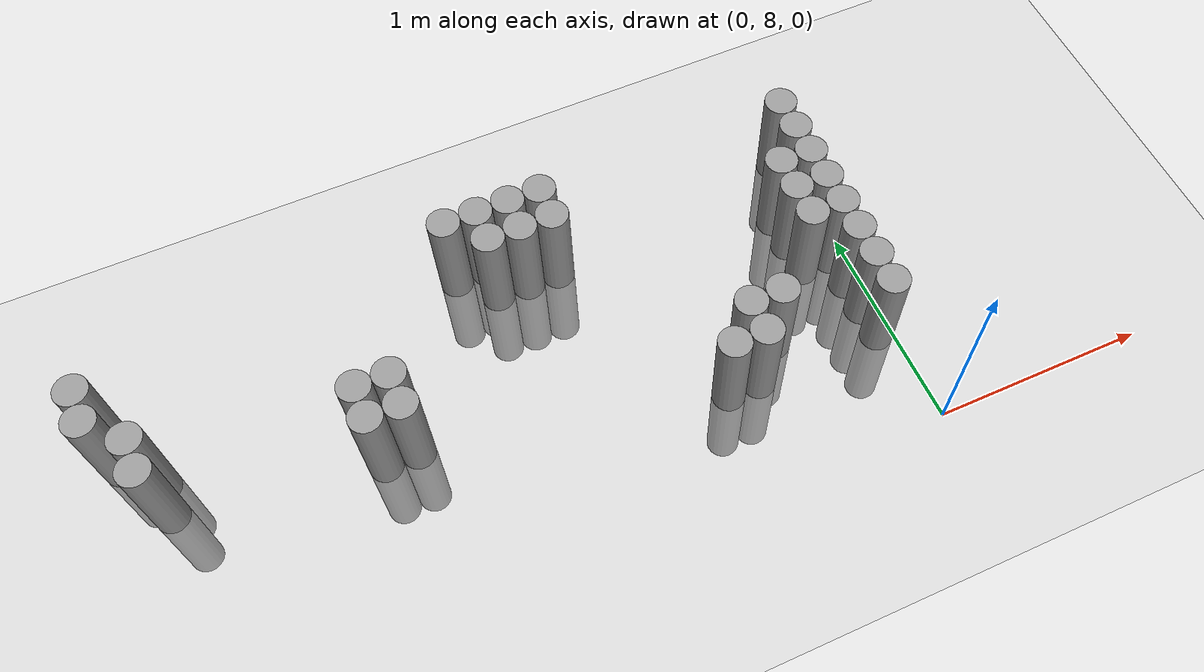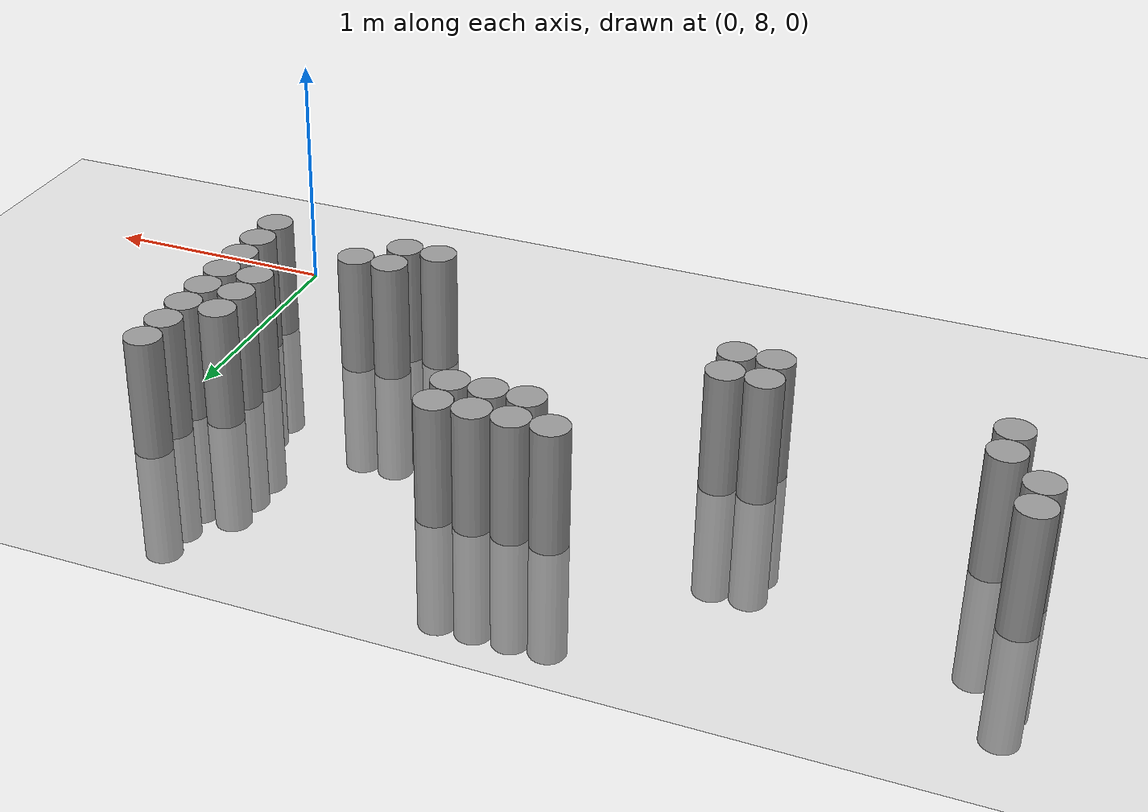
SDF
<sdf version="1.6">
 <world name="default">
  <model name="ground_plane">
   <static>1</static>
   <static>1</static>
   <link name="link">
    <collision name="collision">
     <geometry><plane><normal>0 0 1</normal><size>100 100</size></plane></geometry>
     <surface><friction><ode><mu>100</mu><mu2>50</mu2></ode></friction></surface>
    </collision>
    <visual name="visual">
     <cast_shadows>0</cast_shadows>
     <geometry><plane><normal>0 0 1</normal><size>100 100</size></plane></geometry>
     <material>
      <script><uri>file://media/materials/scripts/gazebo.material</uri><name>Gazebo/Grey</name></script>
     </material>
    </visual>
   </link>
  </model>
  <model name="unit_cylinder_167">
   <static>1</static>
   <pose>-3.375000 9.225000 0.000000 0.000000 0.000000 0.000000</pose>
   <link name="link">
    <inertial>
     <mass>1</mass>
     <inertia><ixx>0.145833</ixx><ixy>0</ixy><ixz>0</ixz><iyy>0.145833</iyy><iyz>0</iyz><izz>0.125</izz></inertia>
    </inertial>
    <collision name="collision">
     <geometry><cylinder><radius>0.075000</radius><length>1</length></cylinder></geometry>
    </collision>
    <visual name="visual">
     <geometry><cylinder><radius>0.075000</radius><length>1</length></cylinder></geometry>
     <material>
      <script><name>Gazebo/Grey</name><uri>file://media/materials/scripts/gazebo.material</uri></script>
     </material>
    </visual>
   </link>
  </model>
  <model name="unit_cylinder_168">
   <static>1</static>
   <pose>-3.375000 9.375000 0.000000 0.000000 0.000000 0.000000</pose>
   <link name="link">
    <inertial>
     <mass>1</mass>
     <inertia><ixx>0.145833</ixx><ixy>0</ixy><ixz>0</ixz><iyy>0.145833</iyy><iyz>0</iyz><izz>0.125</izz></inertia>
    </inertial>
    <collision name="collision">
     <geometry><cylinder><radius>0.075000</radius><length>1</length></cylinder></geometry>
    </collision>
    <visual name="visual">
     <geometry><cylinder><radius>0.075000</radius><length>1</length></cylinder></geometry>
     <material>
      <script><name>Gazebo/Grey</name><uri>file://media/materials/scripts/gazebo.material</uri></script>
     </material>
    </visual>
   </link>
  </model>
  <model name="unit_cylinder_171">
   <static>1</static>
   <pose>-3.225000 8.925000 0.000000 0.000000 0.000000 0.000000</pose>
   <link name="link">
    <inertial>
     <mass>1</mass>
     <inertia><ixx>0.145833</ixx><ixy>0</ixy><ixz>0</ixz><iyy>0.145833</iyy><iyz>0</iyz><izz>0.125</izz></inertia>
    </inertial>
    <collision name="collision">
     <geometry><cylinder><radius>0.075000</radius><length>1</length></cylinder></geometry>
    </collision>
    <visual name="visual">
     <geometry><cylinder><radius>0.075000</radius><length>1</length></cylinder></geometry>
     <material>
      <script><name>Gazebo/Grey</name><uri>file://media/materials/scripts/gazebo.material</uri></script>
     </material>
    </visual>
   </link>
  </model>
  <model name="unit_cylinder_172">
   <static>1</static>
   <pose>-3.225000 9.075000 0.000000 0.000000 0.000000 0.000000</pose>
   <link name="link">
    <inertial>
     <mass>1</mass>
     <inertia><ixx>0.145833</ixx><ixy>0</ixy><ixz>0</ixz><iyy>0.145833</iyy><iyz>0</iyz><izz>0.125</izz></inertia>
    </inertial>
    <collision name="collision">
     <geometry><cylinder><radius>0.075000</radius><length>1</length></cylinder></geometry>
    </collision>
    <visual name="visual">
     <geometry><cylinder><radius>0.075000</radius><length>1</length></cylinder></geometry>
     <material>
      <script><name>Gazebo/Grey</name><uri>file://media/materials/scripts/gazebo.material</uri></script>
     </material>
    </visual>
   </link>
  </model>
  <model name="unit_cylinder_173">
   <static>1</static>
   <pose>-2.325000 8.775000 0.000000 0.000000 0.000000 0.000000</pose>
   <link name="link">
    <inertial>
     <mass>1</mass>
     <inertia><ixx>0.145833</ixx><ixy>0</ixy><ixz>0</ixz><iyy>0.145833</iyy><iyz>0</iyz><izz>0.125</izz></inertia>
    </inertial>
    <collision name="collision">
     <geometry><cylinder><radius>0.075000</radius><length>1</length></cylinder></geometry>
    </collision>
    <visual name="visual">
     <geometry><cylinder><radius>0.075000</radius><length>1</length></cylinder></geometry>
     <material>
      <script><name>Gazebo/Grey</name><uri>file://media/materials/scripts/gazebo.material</uri></script>
     </material>
    </visual>
   </link>
  </model>
  <model name="unit_cylinder_174">
   <static>1</static>
   <pose>-2.325000 8.925000 0.000000 0.000000 0.000000 0.000000</pose>
   <link name="link">
    <inertial>
     <mass>1</mass>
     <inertia><ixx>0.145833</ixx><ixy>0</ixy><ixz>0</ixz><iyy>0.145833</iyy><iyz>0</iyz><izz>0.125</izz></inertia>
    </inertial>
    <collision name="collision">
     <geometry><cylinder><radius>0.075000</radius><length>1</length></cylinder></geometry>
    </collision>
    <visual name="visual">
     <geometry><cylinder><radius>0.075000</radius><length>1</length></cylinder></geometry>
     <material>
      <script><name>Gazebo/Grey</name><uri>file://media/materials/scripts/gazebo.material</uri></script>
     </material>
    </visual>
   </link>
  </model>
  <model name="unit_cylinder_175">
   <static>1</static>
   <pose>-2.175000 8.775000 0.000000 0.000000 0.000000 0.000000</pose>
   <link name="link">
    <inertial>
     <mass>1</mass>
     <inertia><ixx>0.145833</ixx><ixy>0</ixy><ixz>0</ixz><iyy>0.145833</iyy><iyz>0</iyz><izz>0.125</izz></inertia>
    </inertial>
    <collision name="collision">
     <geometry><cylinder><radius>0.075000</radius><length>1</length></cylinder></geometry>
    </collision>
    <visual name="visual">
     <geometry><cylinder><radius>0.075000</radius><length>1</length></cylinder></geometry>
     <material>
      <script><name>Gazebo/Grey</name><uri>file://media/materials/scripts/gazebo.material</uri></script>
     </material>
    </visual>
   </link>
  </model>
  <model name="unit_cylinder_176">
   <static>1</static>
   <pose>-2.175000 8.925000 0.000000 0.000000 0.000000 0.000000</pose>
   <link name="link">
    <inertial>
     <mass>1</mass>
     <inertia><ixx>0.145833</ixx><ixy>0</ixy><ixz>0</ixz><iyy>0.145833</iyy><iyz>0</iyz><izz>0.125</izz></inertia>
    </inertial>
    <collision name="collision">
     <geometry><cylinder><radius>0.075000</radius><length>1</length></cylinder></geometry>
    </collision>
    <visual name="visual">
     <geometry><cylinder><radius>0.075000</radius><length>1</length></cylinder></geometry>
     <material>
      <script><name>Gazebo/Grey</name><uri>file://media/materials/scripts/gazebo.material</uri></script>
     </material>
    </visual>
   </link>
  </model>
  <model name="unit_cylinder_177">
   <static>1</static>
   <pose>-1.725000 9.525000 0.000000 0.000000 0.000000 0.000000</pose>
   <link name="link">
    <inertial>
     <mass>1</mass>
     <inertia><ixx>0.145833</ixx><ixy>0</ixy><ixz>0</ixz><iyy>0.145833</iyy><iyz>0</iyz><izz>0.125</izz></inertia>
    </inertial>
    <collision name="collision">
     <geometry><cylinder><radius>0.075000</radius><length>1</length></cylinder></geometry>
    </collision>
    <visual name="visual">
     <geometry><cylinder><radius>0.075000</radius><length>1</length></cylinder></geometry>
     <material>
      <script><name>Gazebo/Grey</name><uri>file://media/materials/scripts/gazebo.material</uri></script>
     </material>
    </visual>
   </link>
  </model>
  <model name="unit_cylinder_178">
   <static>1</static>
   <pose>-1.575000 9.375000 0.000000 0.000000 0.000000 0.000000</pose>
   <link name="link">
    <inertial>
     <mass>1</mass>
     <inertia><ixx>0.145833</ixx><ixy>0</ixy><ixz>0</ixz><iyy>0.145833</iyy><iyz>0</iyz><izz>0.125</izz></inertia>
    </inertial>
    <collision name="collision">
     <geometry><cylinder><radius>0.075000</radius><length>1</length></cylinder></geometry>
    </collision>
    <visual name="visual">
     <geometry><cylinder><radius>0.075000</radius><length>1</length></cylinder></geometry>
     <material>
      <script><name>Gazebo/Grey</name><uri>file://media/materials/scripts/gazebo.material</uri></script>
     </material>
    </visual>
   </link>
  </model>
  <model name="unit_cylinder_179">
   <static>1</static>
   <pose>-1.575000 9.525000 0.000000 0.000000 0.000000 0.000000</pose>
   <link name="link">
    <inertial>
     <mass>1</mass>
     <inertia><ixx>0.145833</ixx><ixy>0</ixy><ixz>0</ixz><iyy>0.145833</iyy><iyz>0</iyz><izz>0.125</izz></inertia>
    </inertial>
    <collision name="collision">
     <geometry><cylinder><radius>0.075000</radius><length>1</length></cylinder></geometry>
    </collision>
    <visual name="visual">
     <geometry><cylinder><radius>0.075000</radius><length>1</length></cylinder></geometry>
     <material>
      <script><name>Gazebo/Grey</name><uri>file://media/materials/scripts/gazebo.material</uri></script>
     </material>
    </visual>
   </link>
  </model>
  <model name="unit_cylinder_180">
   <static>1</static>
   <pose>-1.425000 9.375000 0.000000 0.000000 0.000000 0.000000</pose>
   <link name="link">
    <inertial>
     <mass>1</mass>
     <inertia><ixx>0.145833</ixx><ixy>0</ixy><ixz>0</ixz><iyy>0.145833</iyy><iyz>0</iyz><izz>0.125</izz></inertia>
    </inertial>
    <collision name="collision">
     <geometry><cylinder><radius>0.075000</radius><length>1</length></cylinder></geometry>
    </collision>
    <visual name="visual">
     <geometry><cylinder><radius>0.075000</radius><length>1</length></cylinder></geometry>
     <material>
      <script><name>Gazebo/Grey</name><uri>file://media/materials/scripts/gazebo.material</uri></script>
     </material>
    </visual>
   </link>
  </model>
  <model name="unit_cylinder_181">
   <static>1</static>
   <pose>-1.425000 9.525000 0.000000 0.000000 0.000000 0.000000</pose>
   <link name="link">
    <inertial>
     <mass>1</mass>
     <inertia><ixx>0.145833</ixx><ixy>0</ixy><ixz>0</ixz><iyy>0.145833</iyy><iyz>0</iyz><izz>0.125</izz></inertia>
    </inertial>
    <collision name="collision">
     <geometry><cylinder><radius>0.075000</radius><length>1</length></cylinder></geometry>
    </collision>
    <visual name="visual">
     <geometry><cylinder><radius>0.075000</radius><length>1</length></cylinder></geometry>
     <material>
      <script><name>Gazebo/Grey</name><uri>file://media/materials/scripts/gazebo.material</uri></script>
     </material>
    </visual>
   </link>
  </model>
  <model name="unit_cylinder_182">
   <static>1</static>
   <pose>-1.275000 9.375000 0.000000 0.000000 0.000000 0.000000</pose>
   <link name="link">
    <inertial>
     <mass>1</mass>
     <inertia><ixx>0.145833</ixx><ixy>0</ixy><ixz>0</ixz><iyy>0.145833</iyy><iyz>0</iyz><izz>0.125</izz></inertia>
    </inertial>
    <collision name="collision">
     <geometry><cylinder><radius>0.075000</radius><length>1</length></cylinder></geometry>
    </collision>
    <visual name="visual">
     <geometry><cylinder><radius>0.075000</radius><length>1</length></cylinder></geometry>
     <material>
      <script><name>Gazebo/Grey</name><uri>file://media/materials/scripts/gazebo.material</uri></script>
     </material>
    </visual>
   </link>
  </model>
  <model name="unit_cylinder_183">
   <static>1</static>
   <pose>-1.275000 9.525000 0.000000 0.000000 0.000000 0.000000</pose>
   <link name="link">
    <inertial>
     <mass>1</mass>
     <inertia><ixx>0.145833</ixx><ixy>0</ixy><ixz>0</ixz><iyy>0.145833</iyy><iyz>0</iyz><izz>0.125</izz></inertia>
    </inertial>
    <collision name="collision">
     <geometry><cylinder><radius>0.075000</radius><length>1</length></cylinder></geometry>
    </collision>
    <visual name="visual">
     <geometry><cylinder><radius>0.075000</radius><length>1</length></cylinder></geometry>
     <material>
      <script><name>Gazebo/Grey</name><uri>file://media/materials/scripts/gazebo.material</uri></script>
     </material>
    </visual>
   </link>
  </model>
  <model name="unit_cylinder_186">
   <static>1</static>
   <pose>-0.825000 8.475000 0.000000 0.000000 0.000000 0.000000</pose>
   <link name="link">
    <inertial>
     <mass>1</mass>
     <inertia><ixx>0.145833</ixx><ixy>0</ixy><ixz>0</ixz><iyy>0.145833</iyy><iyz>0</iyz><izz>0.125</izz></inertia>
    </inertial>
    <collision name="collision">
     <geometry><cylinder><radius>0.075000</radius><length>1</length></cylinder></geometry>
    </collision>
    <visual name="visual">
     <geometry><cylinder><radius>0.075000</radius><length>1</length></cylinder></geometry>
     <material>
      <script><name>Gazebo/Grey</name><uri>file://media/materials/scripts/gazebo.material</uri></script>
     </material>
    </visual>
   </link>
  </model>
  <model name="unit_cylinder_189">
   <static>1</static>
   <pose>-0.675000 8.475000 0.000000 0.000000 0.000000 0.000000</pose>
   <link name="link">
    <inertial>
     <mass>1</mass>
     <inertia><ixx>0.145833</ixx><ixy>0</ixy><ixz>0</ixz><iyy>0.145833</iyy><iyz>0</iyz><izz>0.125</izz></inertia>
    </inertial>
    <collision name="collision">
     <geometry><cylinder><radius>0.075000</radius><length>1</length></cylinder></geometry>
    </collision>
    <visual name="visual">
     <geometry><cylinder><radius>0.075000</radius><length>1</length></cylinder></geometry>
     <material>
      <script><name>Gazebo/Grey</name><uri>file://media/materials/scripts/gazebo.material</uri></script>
     </material>
    </visual>
   </link>
  </model>
  <model name="unit_cylinder_190">
   <static>1</static>
   <pose>-0.675000 8.625000 0.000000 0.000000 0.000000 0.000000</pose>
   <link name="link">
    <inertial>
     <mass>1</mass>
     <inertia><ixx>0.145833</ixx><ixy>0</ixy><ixz>0</ixz><iyy>0.145833</iyy><iyz>0</iyz><izz>0.125</izz></inertia>
    </inertial>
    <collision name="collision">
     <geometry><cylinder><radius>0.075000</radius><length>1</length></cylinder></geometry>
    </collision>
    <visual name="visual">
     <geometry><cylinder><radius>0.075000</radius><length>1</length></cylinder></geometry>
     <material>
      <script><name>Gazebo/Grey</name><uri>file://media/materials/scripts/gazebo.material</uri></script>
     </material>
    </visual>
   </link>
  </model>
  <model name="unit_cylinder_193">
   <static>1</static>
   <pose>-0.525000 8.625000 0.000000 0.000000 0.000000 0.000000</pose>
   <link name="link">
    <inertial>
     <mass>1</mass>
     <inertia><ixx>0.145833</ixx><ixy>0</ixy><ixz>0</ixz><iyy>0.145833</iyy><iyz>0</iyz><izz>0.125</izz></inertia>
    </inertial>
    <collision name="collision">
     <geometry><cylinder><radius>0.075000</radius><length>1</length></cylinder></geometry>
    </collision>
    <visual name="visual">
     <geometry><cylinder><radius>0.075000</radius><length>1</length></cylinder></geometry>
     <material>
      <script><name>Gazebo/Grey</name><uri>file://media/materials/scripts/gazebo.material</uri></script>
     </material>
    </visual>
   </link>
  </model>
  <model name="unit_cylinder_203">
   <static>1</static>
   <pose>-0.225000 8.925000 0.000000 0.000000 0.000000 0.000000</pose>
   <link name="link">
    <inertial>
     <mass>1</mass>
     <inertia><ixx>0.145833</ixx><ixy>0</ixy><ixz>0</ixz><iyy>0.145833</iyy><iyz>0</iyz><izz>0.125</izz></inertia>
    </inertial>
    <collision name="collision">
     <geometry><cylinder><radius>0.075000</radius><length>1</length></cylinder></geometry>
    </collision>
    <visual name="visual">
     <geometry><cylinder><radius>0.075000</radius><length>1</length></cylinder></geometry>
     <material>
      <script><name>Gazebo/Grey</name><uri>file://media/materials/scripts/gazebo.material</uri></script>
     </material>
    </visual>
   </link>
  </model>
  <model name="unit_cylinder_204">
   <static>1</static>
   <pose>-0.225000 9.075000 0.000000 0.000000 0.000000 0.000000</pose>
   <link name="link">
    <inertial>
     <mass>1</mass>
     <inertia><ixx>0.145833</ixx><ixy>0</ixy><ixz>0</ixz><iyy>0.145833</iyy><iyz>0</iyz><izz>0.125</izz></inertia>
    </inertial>
    <collision name="collision">
     <geometry><cylinder><radius>0.075000</radius><length>1</length></cylinder></geometry>
    </collision>
    <visual name="visual">
     <geometry><cylinder><radius>0.075000</radius><length>1</length></cylinder></geometry>
     <material>
      <script><name>Gazebo/Grey</name><uri>file://media/materials/scripts/gazebo.material</uri></script>
     </material>
    </visual>
   </link>
  </model>
  <model name="unit_cylinder_205">
   <static>1</static>
   <pose>-0.225000 9.225000 0.000000 0.000000 0.000000 0.000000</pose>
   <link name="link">
    <inertial>
     <mass>1</mass>
     <inertia><ixx>0.145833</ixx><ixy>0</ixy><ixz>0</ixz><iyy>0.145833</iyy><iyz>0</iyz><izz>0.125</izz></inertia>
    </inertial>
    <collision name="collision">
     <geometry><cylinder><radius>0.075000</radius><length>1</length></cylinder></geometry>
    </collision>
    <visual name="visual">
     <geometry><cylinder><radius>0.075000</radius><length>1</length></cylinder></geometry>
     <material>
      <script><name>Gazebo/Grey</name><uri>file://media/materials/scripts/gazebo.material</uri></script>
     </material>
    </visual>
   </link>
  </model>
  <model name="unit_cylinder_228">
   <static>1</static>
   <pose>-0.075000 8.475000 0.000000 0.000000 0.000000 0.000000</pose>
   <link name="link">
    <inertial>
     <mass>1</mass>
     <inertia><ixx>0.145833</ixx><ixy>0</ixy><ixz>0</ixz><iyy>0.145833</iyy><iyz>0</iyz><izz>0.125</izz></inertia>
    </inertial>
    <collision name="collision">
     <geometry><cylinder><radius>0.075000</radius><length>1</length></cylinder></geometry>
    </collision>
    <visual name="visual">
     <geometry><cylinder><radius>0.075000</radius><length>1</length></cylinder></geometry>
     <material>
      <script><name>Gazebo/Grey</name><uri>file://media/materials/scripts/gazebo.material</uri></script>
     </material>
    </visual>
   </link>
  </model>
  <model name="unit_cylinder_229">
   <static>1</static>
   <pose>-0.075000 8.625000 0.000000 0.000000 0.000000 0.000000</pose>
   <link name="link">
    <inertial>
     <mass>1</mass>
     <inertia><ixx>0.145833</ixx><ixy>0</ixy><ixz>0</ixz><iyy>0.145833</iyy><iyz>0</iyz><izz>0.125</izz></inertia>
    </inertial>
    <collision name="collision">
     <geometry><cylinder><radius>0.075000</radius><length>1</length></cylinder></geometry>
    </collision>
    <visual name="visual">
     <geometry><cylinder><radius>0.075000</radius><length>1</length></cylinder></geometry>
     <material>
      <script><name>Gazebo/Grey</name><uri>file://media/materials/scripts/gazebo.material</uri></script>
     </material>
    </visual>
   </link>
  </model>
  <model name="unit_cylinder_230">
   <static>1</static>
   <pose>-0.075000 8.775000 0.000000 0.000000 0.000000 0.000000</pose>
   <link name="link">
    <inertial>
     <mass>1</mass>
     <inertia><ixx>0.145833</ixx><ixy>0</ixy><ixz>0</ixz><iyy>0.145833</iyy><iyz>0</iyz><izz>0.125</izz></inertia>
    </inertial>
    <collision name="collision">
     <geometry><cylinder><radius>0.075000</radius><length>1</length></cylinder></geometry>
    </collision>
    <visual name="visual">
     <geometry><cylinder><radius>0.075000</radius><length>1</length></cylinder></geometry>
     <material>
      <script><name>Gazebo/Grey</name><uri>file://media/materials/scripts/gazebo.material</uri></script>
     </material>
    </visual>
   </link>
  </model>
  <model name="unit_cylinder_231">
   <static>1</static>
   <pose>-0.075000 8.925000 0.000000 0.000000 0.000000 0.000000</pose>
   <link name="link">
    <inertial>
     <mass>1</mass>
     <inertia><ixx>0.145833</ixx><ixy>0</ixy><ixz>0</ixz><iyy>0.145833</iyy><iyz>0</iyz><izz>0.125</izz></inertia>
    </inertial>
    <collision name="collision">
     <geometry><cylinder><radius>0.075000</radius><length>1</length></cylinder></geometry>
    </collision>
    <visual name="visual">
     <geometry><cylinder><radius>0.075000</radius><length>1</length></cylinder></geometry>
     <material>
      <script><name>Gazebo/Grey</name><uri>file://media/materials/scripts/gazebo.material</uri></script>
     </material>
    </visual>
   </link>
  </model>
  <model name="unit_cylinder_232">
   <static>1</static>
   <pose>-0.075000 9.075000 0.000000 0.000000 0.000000 0.000000</pose>
   <link name="link">
    <inertial>
     <mass>1</mass>
     <inertia><ixx>0.145833</ixx><ixy>0</ixy><ixz>0</ixz><iyy>0.145833</iyy><iyz>0</iyz><izz>0.125</izz></inertia>
    </inertial>
    <collision name="collision">
     <geometry><cylinder><radius>0.075000</radius><length>1</length></cylinder></geometry>
    </collision>
    <visual name="visual">
     <geometry><cylinder><radius>0.075000</radius><length>1</length></cylinder></geometry>
     <material>
      <script><name>Gazebo/Grey</name><uri>file://media/materials/scripts/gazebo.material</uri></script>
     </material>
    </visual>
   </link>
  </model>
  <model name="unit_cylinder_233">
   <static>1</static>
   <pose>-0.075000 9.225000 0.000000 0.000000 0.000000 0.000000</pose>
   <link name="link">
    <inertial>
     <mass>1</mass>
     <inertia><ixx>0.145833</ixx><ixy>0</ixy><ixz>0</ixz><iyy>0.145833</iyy><iyz>0</iyz><izz>0.125</izz></inertia>
    </inertial>
    <collision name="collision">
     <geometry><cylinder><radius>0.075000</radius><length>1</length></cylinder></geometry>
    </collision>
    <visual name="visual">
     <geometry><cylinder><radius>0.075000</radius><length>1</length></cylinder></geometry>
     <material>
      <script><name>Gazebo/Grey</name><uri>file://media/materials/scripts/gazebo.material</uri></script>
     </material>
    </visual>
   </link>
  </model>
  <model name="unit_cylinder_234">
   <static>1</static>
   <pose>-0.075000 9.375000 0.000000 0.000000 0.000000 0.000000</pose>
   <link name="link">
    <inertial>
     <mass>1</mass>
     <inertia><ixx>0.145833</ixx><ixy>0</ixy><ixz>0</ixz><iyy>0.145833</iyy><iyz>0</iyz><izz>0.125</izz></inertia>
    </inertial>
    <collision name="collision">
     <geometry><cylinder><radius>0.075000</radius><length>1</length></cylinder></geometry>
    </collision>
    <visual name="visual">
     <geometry><cylinder><radius>0.075000</radius><length>1</length></cylinder></geometry>
     <material>
      <script><name>Gazebo/Grey</name><uri>file://media/materials/scripts/gazebo.material</uri></script>
     </material>
    </visual>
   </link>
  </model>
  <model name="unit_cylinder_235">
   <static>1</static>
   <pose>-0.075000 9.525000 0.000000 0.000000 0.000000 0.000000</pose>
   <link name="link">
    <inertial>
     <mass>1</mass>
     <inertia><ixx>0.145833</ixx><ixy>0</ixy><ixz>0</ixz><iyy>0.145833</iyy><iyz>0</iyz><izz>0.125</izz></inertia>
    </inertial>
    <collision name="collision">
     <geometry><cylinder><radius>0.075000</radius><length>1</length></cylinder></geometry>
    </collision>
    <visual name="visual">
     <geometry><cylinder><radius>0.075000</radius><length>1</length></cylinder></geometry>
     <material>
      <script><name>Gazebo/Grey</name><uri>file://media/materials/scripts/gazebo.material</uri></script>
     </material>
    </visual>
   </link>
  </model>
 </world>
</sdf>
